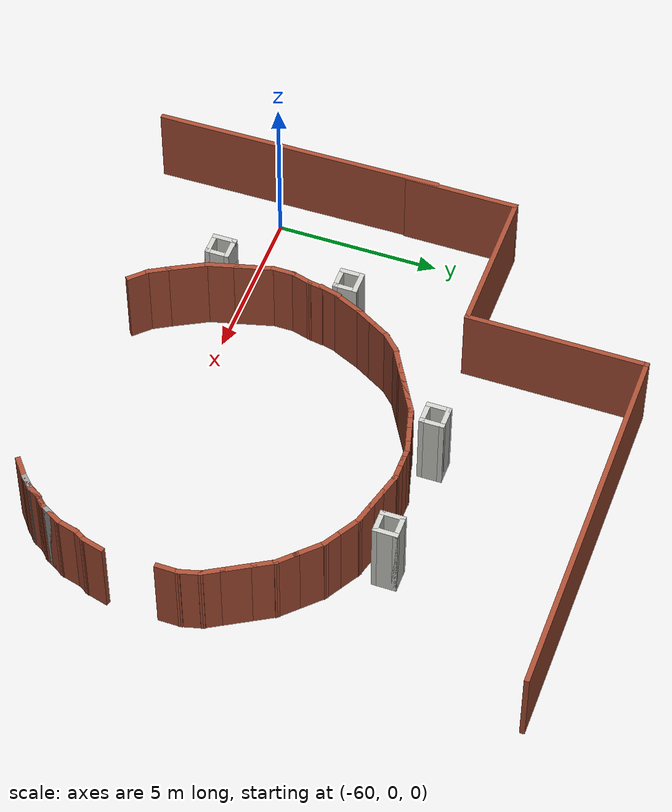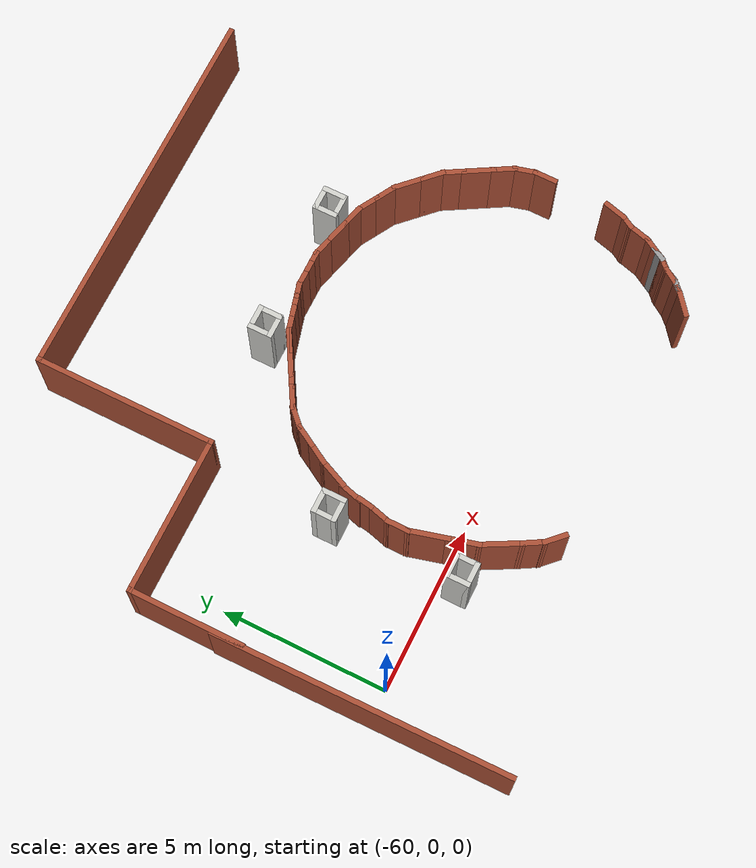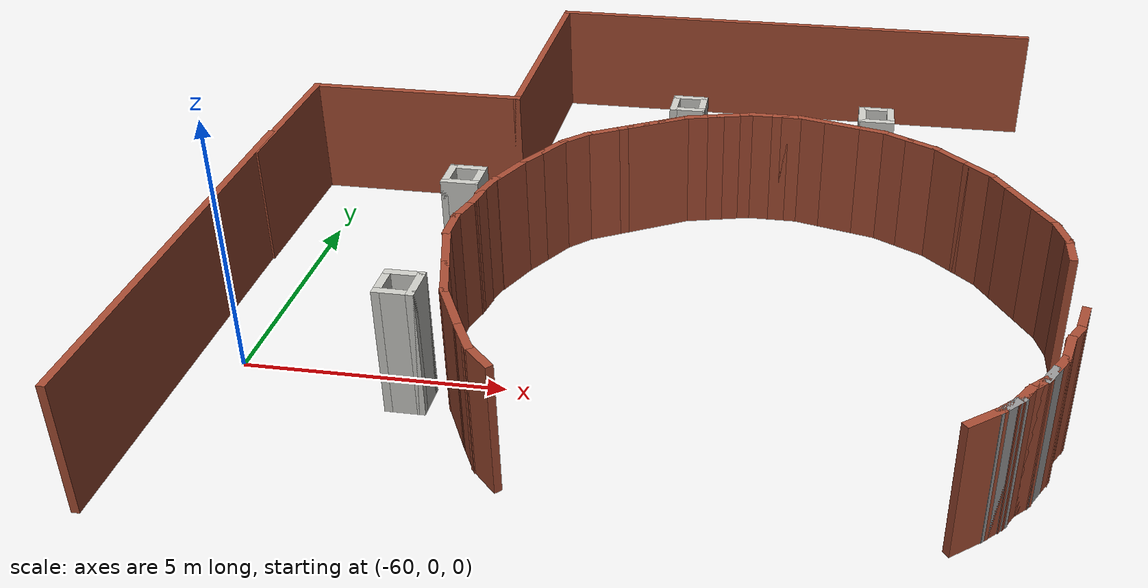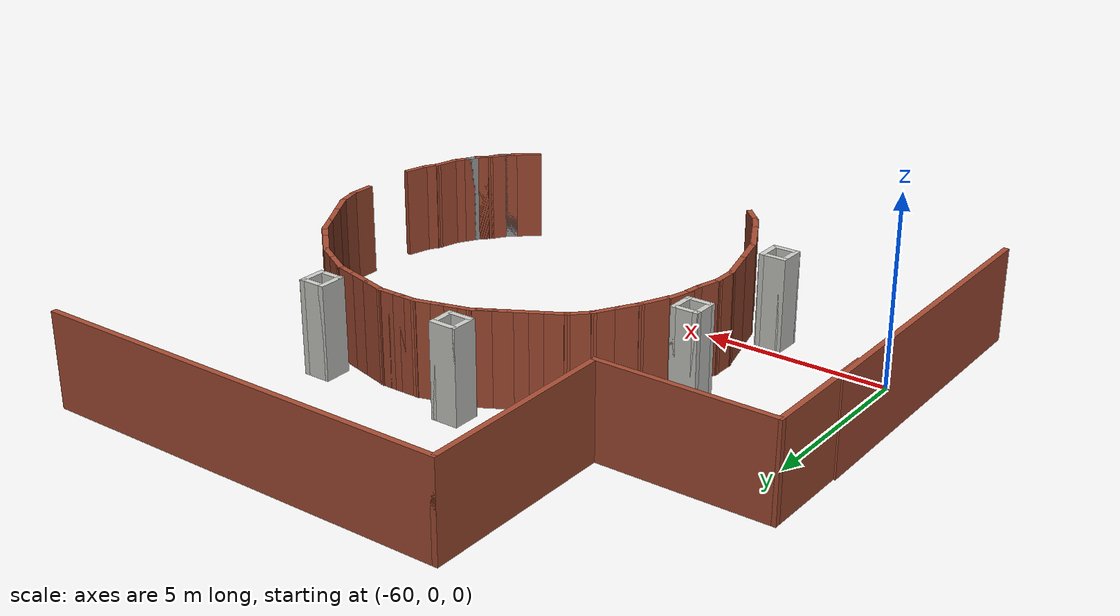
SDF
<sdf version="1.7">
 <model name="Planta1_TD">
  <pose>-6.73335 -7.75071 0 0 -0 0</pose>
  <link name="Wall_100">
   <collision name="Wall_100_Collision">
    <geometry><box><size>0.25 0.15 2.5</size></box></geometry>
    <pose>0 0 1.25 0 -0 0</pose>
   </collision>
   <visual name="Wall_100_Visual">
    <pose>0 0 1.25 0 -0 0</pose>
    <geometry><box><size>0.25 0.15 2.5</size></box></geometry>
    <material>
     <script><uri>file://media/materials/scripts/gazebo.material</uri><name>Gazebo/Grey</name></script>
     <ambient>1 1 1 1</ambient>
    </material>
    <meta><layer>0</layer></meta>
   </visual>
   <pose>-39.7639 5.45965 0 0 -0 -2.35619</pose>
  </link>
  <link name="Wall_101">
   <collision name="Wall_101_Collision">
    <geometry><box><size>0.5 0.15 2.5</size></box></geometry>
    <pose>0 0 1.25 0 -0 0</pose>
   </collision>
   <visual name="Wall_101_Visual">
    <pose>0 0 1.25 0 -0 0</pose>
    <geometry><box><size>0.5 0.15 2.5</size></box></geometry>
    <material>
     <script><uri>file://media/materials/scripts/gazebo.material</uri><name>Gazebo/Grey</name></script>
     <ambient>1 1 1 1</ambient>
    </material>
    <meta><layer>0</layer></meta>
   </visual>
   <pose>-39.923 5.30056 0 0 -0 -2.35619</pose>
  </link>
  <link name="Wall_111">
   <collision name="Wall_111_Collision">
    <geometry><box><size>0.781405 0.15 2.5</size></box></geometry>
    <pose>0 0 1.25 0 -0 0</pose>
   </collision>
   <visual name="Wall_111_Visual">
    <pose>0 0 1.25 0 -0 0</pose>
    <geometry><box><size>0.781405 0.15 2.5</size></box></geometry>
    <material>
     <script><uri>file://media/materials/scripts/gazebo.material</uri><name>Gazebo/Bricks</name></script>
     <ambient>1 1 1 1</ambient>
    </material>
    <meta><layer>0</layer></meta>
   </visual>
   <pose>-40.2931 4.97943 0 0 -0 0.675405</pose>
  </link>
  <link name="Wall_112">
   <collision name="Wall_112_Collision">
    <geometry><box><size>0.5 0.15 2.5</size></box></geometry>
    <pose>0 0 1.25 0 -0 0</pose>
   </collision>
   <visual name="Wall_112_Visual">
    <pose>0 0 1.25 0 -0 0</pose>
    <geometry><box><size>0.5 0.15 2.5</size></box></geometry>
    <material>
     <script><uri>file://media/materials/scripts/gazebo.material</uri><name>Gazebo/Bricks</name></script>
     <ambient>1 1 1 1</ambient>
    </material>
    <meta><layer>0</layer></meta>
   </visual>
   <pose>-39.923 5.30056 0 0 -0 0.785398</pose>
  </link>
  <link name="Wall_113">
   <collision name="Wall_113_Collision">
    <geometry><box><size>0.597342 0.15 2.5</size></box></geometry>
    <pose>0 0 1.25 0 -0 0</pose>
   </collision>
   <visual name="Wall_113_Visual">
    <pose>0 0 1.25 0 -0 0</pose>
    <geometry><box><size>0.597342 0.15 2.5</size></box></geometry>
    <material>
     <script><uri>file://media/materials/scripts/gazebo.material</uri><name>Gazebo/Bricks</name></script>
     <ambient>1 1 1 1</ambient>
    </material>
    <meta><layer>0</layer></meta>
   </visual>
   <pose>-39.6764 5.61121 0 0 -0 0.989308</pose>
  </link>
  <link name="Wall_114">
   <collision name="Wall_114_Collision">
    <geometry><box><size>0.5 0.15 2.5</size></box></geometry>
    <pose>0 0 1.25 0 -0 0</pose>
   </collision>
   <visual name="Wall_114_Visual">
    <pose>0 0 1.25 0 -0 0</pose>
    <geometry><box><size>0.5 0.15 2.5</size></box></geometry>
    <material>
     <script><uri>file://media/materials/scripts/gazebo.material</uri><name>Gazebo/Bricks</name></script>
     <ambient>1 1 1 1</ambient>
    </material>
    <meta><layer>0</layer></meta>
   </visual>
   <pose>-39.4298 5.92186 0 0 -0 0.785398</pose>
  </link>
  <link name="Wall_115">
   <collision name="Wall_115_Collision">
    <geometry><box><size>0.5 0.15 2.5</size></box></geometry>
    <pose>0 0 1.25 0 -0 0</pose>
   </collision>
   <visual name="Wall_115_Visual">
    <pose>0 0 1.25 0 -0 0</pose>
    <geometry><box><size>0.5 0.15 2.5</size></box></geometry>
    <material>
     <script><uri>file://media/materials/scripts/gazebo.material</uri><name>Gazebo/Bricks</name></script>
     <ambient>1 1 1 1</ambient>
    </material>
    <meta><layer>0</layer></meta>
   </visual>
   <pose>-39.2185 6.19716 0 0 -0 1.0472</pose>
  </link>
  <link name="Wall_116">
   <collision name="Wall_116_Collision">
    <geometry><box><size>0.5 0.15 2.5</size></box></geometry>
    <pose>0 0 1.25 0 -0 0</pose>
   </collision>
   <visual name="Wall_116_Visual">
    <pose>0 0 1.25 0 -0 0</pose>
    <geometry><box><size>0.5 0.15 2.5</size></box></geometry>
    <material>
     <script><uri>file://media/materials/scripts/gazebo.material</uri><name>Gazebo/Bricks</name></script>
     <ambient>1 1 1 1</ambient>
    </material>
    <meta><layer>0</layer></meta>
   </visual>
   <pose>-39.0435 6.50027 0 0 -0 1.0472</pose>
  </link>
  <link name="Wall_117">
   <collision name="Wall_117_Collision">
    <geometry><box><size>0.75 0.15 2.5</size></box></geometry>
    <pose>0 0 1.25 0 -0 0</pose>
   </collision>
   <visual name="Wall_117_Visual">
    <pose>0 0 1.25 0 -0 0</pose>
    <geometry><box><size>0.75 0.15 2.5</size></box></geometry>
    <material>
     <script><uri>file://media/materials/scripts/gazebo.material</uri><name>Gazebo/Bricks</name></script>
     <ambient>1 1 1 1</ambient>
    </material>
    <meta><layer>0</layer></meta>
   </visual>
   <pose>-38.8784 6.9416 0 0 -0 1.309</pose>
  </link>
  <link name="Wall_118">
   <collision name="Wall_118_Collision">
    <geometry><box><size>0.5 0.15 2.5</size></box></geometry>
    <pose>0 0 1.25 0 -0 0</pose>
   </collision>
   <visual name="Wall_118_Visual">
    <pose>0 0 1.25 0 -0 0</pose>
    <geometry><box><size>0.5 0.15 2.5</size></box></geometry>
    <material>
     <script><uri>file://media/materials/scripts/gazebo.material</uri><name>Gazebo/Bricks</name></script>
     <ambient>1 1 1 1</ambient>
    </material>
    <meta><layer>0</layer></meta>
   </visual>
   <pose>-38.7132 7.38293 0 0 -0 1.0472</pose>
  </link>
  <link name="Wall_119">
   <collision name="Wall_119_Collision">
    <geometry><box><size>0.75 0.15 2.5</size></box></geometry>
    <pose>0 0 1.25 0 -0 0</pose>
   </collision>
   <visual name="Wall_119_Visual">
    <pose>0 0 1.25 0 -0 0</pose>
    <geometry><box><size>0.75 0.15 2.5</size></box></geometry>
    <material>
     <script><uri>file://media/materials/scripts/gazebo.material</uri><name>Gazebo/Bricks</name></script>
     <ambient>1 1 1 1</ambient>
    </material>
    <meta><layer>0</layer></meta>
   </visual>
   <pose>-38.5481 7.82426 0 0 -0 1.309</pose>
  </link>
  <link name="Wall_121">
   <collision name="Wall_121_Collision">
    <geometry><box><size>0.5 0.15 2.5</size></box></geometry>
    <pose>0 0 1.25 0 -0 0</pose>
   </collision>
   <visual name="Wall_121_Visual">
    <pose>0 0 1.25 0 -0 0</pose>
    <geometry><box><size>0.5 0.15 2.5</size></box></geometry>
    <material>
     <script><uri>file://media/materials/scripts/gazebo.material</uri><name>Gazebo/Bricks</name></script>
     <ambient>1 1 1 1</ambient>
    </material>
    <meta><layer>0</layer></meta>
   </visual>
   <pose>-43.6377 14.7863 0 0 -0 0</pose>
  </link>
  <link name="Wall_122">
   <collision name="Wall_122_Collision">
    <geometry><box><size>0.75 0.15 2.5</size></box></geometry>
    <pose>0 0 1.25 0 -0 0</pose>
   </collision>
   <visual name="Wall_122_Visual">
    <pose>0 0 1.25 0 -0 0</pose>
    <geometry><box><size>0.75 0.15 2.5</size></box></geometry>
    <material>
     <script><uri>file://media/materials/scripts/gazebo.material</uri><name>Gazebo/Bricks</name></script>
     <ambient>1 1 1 1</ambient>
    </material>
    <meta><layer>0</layer></meta>
   </visual>
   <pose>-43.1729 14.7086 0 0 -0 -0.261799</pose>
  </link>
  <link name="Wall_123">
   <collision name="Wall_123_Collision">
    <geometry><box><size>0.75 0.15 2.5</size></box></geometry>
    <pose>0 0 1.25 0 -0 0</pose>
   </collision>
   <visual name="Wall_123_Visual">
    <pose>0 0 1.25 0 -0 0</pose>
    <geometry><box><size>0.75 0.15 2.5</size></box></geometry>
    <material>
     <script><uri>file://media/materials/scripts/gazebo.material</uri><name>Gazebo/Bricks</name></script>
     <ambient>1 1 1 1</ambient>
    </material>
    <meta><layer>0</layer></meta>
   </visual>
   <pose>-42.5934 14.5533 0 0 -0 -0.261799</pose>
  </link>
  <link name="Wall_124">
   <collision name="Wall_124_Collision">
    <geometry><box><size>0.75 0.15 2.5</size></box></geometry>
    <pose>0 0 1.25 0 -0 0</pose>
   </collision>
   <visual name="Wall_124_Visual">
    <pose>0 0 1.25 0 -0 0</pose>
    <geometry><box><size>0.75 0.15 2.5</size></box></geometry>
    <material>
     <script><uri>file://media/materials/scripts/gazebo.material</uri><name>Gazebo/Bricks</name></script>
     <ambient>1 1 1 1</ambient>
    </material>
    <meta><layer>0</layer></meta>
   </visual>
   <pose>-42.0138 14.398 0 0 -0 -0.261799</pose>
  </link>
  <link name="Wall_125">
   <collision name="Wall_125_Collision">
    <geometry><box><size>0.75 0.15 2.5</size></box></geometry>
    <pose>0 0 1.25 0 -0 0</pose>
   </collision>
   <visual name="Wall_125_Visual">
    <pose>0 0 1.25 0 -0 0</pose>
    <geometry><box><size>0.75 0.15 2.5</size></box></geometry>
    <material>
     <script><uri>file://media/materials/scripts/gazebo.material</uri><name>Gazebo/Bricks</name></script>
     <ambient>1 1 1 1</ambient>
    </material>
    <meta><layer>0</layer></meta>
   </visual>
   <pose>-41.4642 14.1704 0 0 -0 -0.523599</pose>
  </link>
  <link name="Wall_126">
   <collision name="Wall_126_Collision">
    <geometry><box><size>0.75 0.15 2.5</size></box></geometry>
    <pose>0 0 1.25 0 -0 0</pose>
   </collision>
   <visual name="Wall_126_Visual">
    <pose>0 0 1.25 0 -0 0</pose>
    <geometry><box><size>0.75 0.15 2.5</size></box></geometry>
    <material>
     <script><uri>file://media/materials/scripts/gazebo.material</uri><name>Gazebo/Bricks</name></script>
     <ambient>1 1 1 1</ambient>
    </material>
    <meta><layer>0</layer></meta>
   </visual>
   <pose>-40.9446 13.8704 0 0 -0 -0.523599</pose>
  </link>
  <link name="Wall_127">
   <collision name="Wall_127_Collision">
    <geometry><box><size>1 0.15 2.5</size></box></geometry>
    <pose>0 0 1.25 0 -0 0</pose>
   </collision>
   <visual name="Wall_127_Visual">
    <pose>0 0 1.25 0 -0 0</pose>
    <geometry><box><size>1 0.15 2.5</size></box></geometry>
    <material>
     <script><uri>file://media/materials/scripts/gazebo.material</uri><name>Gazebo/Bricks</name></script>
     <ambient>1 1 1 1</ambient>
    </material>
    <meta><layer>0</layer></meta>
   </visual>
   <pose>-40.3843 13.4199 0 0 -0 -0.785398</pose>
  </link>
  <link name="Wall_128">
   <collision name="Wall_128_Collision">
    <geometry><box><size>0.75 0.15 2.5</size></box></geometry>
    <pose>0 0 1.25 0 -0 0</pose>
   </collision>
   <visual name="Wall_128_Visual">
    <pose>0 0 1.25 0 -0 0</pose>
    <geometry><box><size>0.75 0.15 2.5</size></box></geometry>
    <material>
     <script><uri>file://media/materials/scripts/gazebo.material</uri><name>Gazebo/Bricks</name></script>
     <ambient>1 1 1 1</ambient>
    </material>
    <meta><layer>0</layer></meta>
   </visual>
   <pose>-39.8716 12.9072 0 0 -0 -0.785398</pose>
  </link>
  <link name="Wall_129">
   <collision name="Wall_129_Collision">
    <geometry><box><size>0.75 0.15 2.5</size></box></geometry>
    <pose>0 0 1.25 0 -0 0</pose>
   </collision>
   <visual name="Wall_129_Visual">
    <pose>0 0 1.25 0 -0 0</pose>
    <geometry><box><size>0.75 0.15 2.5</size></box></geometry>
    <material>
     <script><uri>file://media/materials/scripts/gazebo.material</uri><name>Gazebo/Bricks</name></script>
     <ambient>1 1 1 1</ambient>
    </material>
    <meta><layer>0</layer></meta>
   </visual>
   <pose>-39.5095 12.4353 0 0 -0 -1.0472</pose>
  </link>
  <link name="Wall_130">
   <collision name="Wall_130_Collision">
    <geometry><box><size>1 0.15 2.5</size></box></geometry>
    <pose>0 0 1.25 0 -0 0</pose>
   </collision>
   <visual name="Wall_130_Visual">
    <pose>0 0 1.25 0 -0 0</pose>
    <geometry><box><size>1 0.15 2.5</size></box></geometry>
    <material>
     <script><uri>file://media/materials/scripts/gazebo.material</uri><name>Gazebo/Bricks</name></script>
     <ambient>1 1 1 1</ambient>
    </material>
    <meta><layer>0</layer></meta>
   </visual>
   <pose>-39.147 11.8074 0 0 -0 -1.0472</pose>
  </link>
  <link name="Wall_131">
   <collision name="Wall_131_Collision">
    <geometry><box><size>0.75 0.15 2.5</size></box></geometry>
    <pose>0 0 1.25 0 -0 0</pose>
   </collision>
   <visual name="Wall_131_Visual">
    <pose>0 0 1.25 0 -0 0</pose>
    <geometry><box><size>0.75 0.15 2.5</size></box></geometry>
    <material>
     <script><uri>file://media/materials/scripts/gazebo.material</uri><name>Gazebo/Bricks</name></script>
     <ambient>1 1 1 1</ambient>
    </material>
    <meta><layer>0</layer></meta>
   </visual>
   <pose>-38.7845 11.1795 0 0 -0 -1.0472</pose>
  </link>
  <link name="Wall_132">
   <collision name="Wall_132_Collision">
    <geometry><box><size>0.75 0.15 2.5</size></box></geometry>
    <pose>0 0 1.25 0 -0 0</pose>
   </collision>
   <visual name="Wall_132_Visual">
    <pose>0 0 1.25 0 -0 0</pose>
    <geometry><box><size>0.75 0.15 2.5</size></box></geometry>
    <material>
     <script><uri>file://media/materials/scripts/gazebo.material</uri><name>Gazebo/Bricks</name></script>
     <ambient>1 1 1 1</ambient>
    </material>
    <meta><layer>0</layer></meta>
   </visual>
   <pose>-38.5568 10.63 0 0 -0 -1.309</pose>
  </link>
  <link name="Wall_133">
   <collision name="Wall_133_Collision">
    <geometry><box><size>0.75 0.15 2.5</size></box></geometry>
    <pose>0 0 1.25 0 -0 0</pose>
   </collision>
   <visual name="Wall_133_Visual">
    <pose>0 0 1.25 0 -0 0</pose>
    <geometry><box><size>0.75 0.15 2.5</size></box></geometry>
    <material>
     <script><uri>file://media/materials/scripts/gazebo.material</uri><name>Gazebo/Bricks</name></script>
     <ambient>1 1 1 1</ambient>
    </material>
    <meta><layer>0</layer></meta>
   </visual>
   <pose>-38.4792 10.0402 0 0 -0 -1.5708</pose>
  </link>
  <link name="Wall_137">
   <collision name="Wall_137_Collision">
    <geometry><box><size>0.5 0.15 2.5</size></box></geometry>
    <pose>0 0 1.25 0 -0 0</pose>
   </collision>
   <visual name="Wall_137_Visual">
    <pose>0 0 1.25 0 -0 0</pose>
    <geometry><box><size>0.5 0.15 2.5</size></box></geometry>
    <material>
     <script><uri>file://media/materials/scripts/gazebo.material</uri><name>Gazebo/Bricks</name></script>
     <ambient>1 1 1 1</ambient>
    </material>
    <meta><layer>0</layer></meta>
   </visual>
   <pose>-43.9877 14.7863 0 0 -0 3.14159</pose>
  </link>
  <link name="Wall_138">
   <collision name="Wall_138_Collision">
    <geometry><box><size>0.5 0.15 2.5</size></box></geometry>
    <pose>0 0 1.25 0 -0 0</pose>
   </collision>
   <visual name="Wall_138_Visual">
    <pose>0 0 1.25 0 -0 0</pose>
    <geometry><box><size>0.5 0.15 2.5</size></box></geometry>
    <material>
     <script><uri>file://media/materials/scripts/gazebo.material</uri><name>Gazebo/Bricks</name></script>
     <ambient>1 1 1 1</ambient>
    </material>
    <meta><layer>0</layer></meta>
   </visual>
   <pose>-44.3377 14.7863 0 0 -0 3.14159</pose>
  </link>
  <link name="Wall_139">
   <collision name="Wall_139_Collision">
    <geometry><box><size>0.5 0.15 2.5</size></box></geometry>
    <pose>0 0 1.25 0 -0 0</pose>
   </collision>
   <visual name="Wall_139_Visual">
    <pose>0 0 1.25 0 -0 0</pose>
    <geometry><box><size>0.5 0.15 2.5</size></box></geometry>
    <material>
     <script><uri>file://media/materials/scripts/gazebo.material</uri><name>Gazebo/Bricks</name></script>
     <ambient>1 1 1 1</ambient>
    </material>
    <meta><layer>0</layer></meta>
   </visual>
   <pose>-44.6817 14.741 0 0 -0 -2.87979</pose>
  </link>
  <link name="Wall_140">
   <collision name="Wall_140_Collision">
    <geometry><box><size>0.5 0.15 2.5</size></box></geometry>
    <pose>0 0 1.25 0 -0 0</pose>
   </collision>
   <visual name="Wall_140_Visual">
    <pose>0 0 1.25 0 -0 0</pose>
    <geometry><box><size>0.5 0.15 2.5</size></box></geometry>
    <material>
     <script><uri>file://media/materials/scripts/gazebo.material</uri><name>Gazebo/Bricks</name></script>
     <ambient>1 1 1 1</ambient>
    </material>
    <meta><layer>0</layer></meta>
   </visual>
   <pose>-45.0198 14.6504 0 0 -0 -2.87979</pose>
  </link>
  <link name="Wall_141">
   <collision name="Wall_141_Collision">
    <geometry><box><size>0.5 0.15 2.5</size></box></geometry>
    <pose>0 0 1.25 0 -0 0</pose>
   </collision>
   <visual name="Wall_141_Visual">
    <pose>0 0 1.25 0 -0 0</pose>
    <geometry><box><size>0.5 0.15 2.5</size></box></geometry>
    <material>
     <script><uri>file://media/materials/scripts/gazebo.material</uri><name>Gazebo/Bricks</name></script>
     <ambient>1 1 1 1</ambient>
    </material>
    <meta><layer>0</layer></meta>
   </visual>
   <pose>-45.3579 14.5598 0 0 -0 -2.87979</pose>
  </link>
  <link name="Wall_142">
   <collision name="Wall_142_Collision">
    <geometry><box><size>0.5 0.15 2.5</size></box></geometry>
    <pose>0 0 1.25 0 -0 0</pose>
   </collision>
   <visual name="Wall_142_Visual">
    <pose>0 0 1.25 0 -0 0</pose>
    <geometry><box><size>0.5 0.15 2.5</size></box></geometry>
    <material>
     <script><uri>file://media/materials/scripts/gazebo.material</uri><name>Gazebo/Bricks</name></script>
     <ambient>1 1 1 1</ambient>
    </material>
    <meta><layer>0</layer></meta>
   </visual>
   <pose>-45.6959 14.4692 0 0 -0 -2.87979</pose>
  </link>
  <link name="Wall_143">
   <collision name="Wall_143_Collision">
    <geometry><box><size>0.75 0.15 2.5</size></box></geometry>
    <pose>0 0 1.25 0 -0 0</pose>
   </collision>
   <visual name="Wall_143_Visual">
    <pose>0 0 1.25 0 -0 0</pose>
    <geometry><box><size>0.75 0.15 2.5</size></box></geometry>
    <material>
     <script><uri>file://media/materials/scripts/gazebo.material</uri><name>Gazebo/Bricks</name></script>
     <ambient>1 1 1 1</ambient>
    </material>
    <meta><layer>0</layer></meta>
   </visual>
   <pose>-46.1248 14.2739 0 0 -0 -2.61799</pose>
  </link>
  <link name="Wall_144">
   <collision name="Wall_144_Collision">
    <geometry><box><size>0.5 0.15 2.5</size></box></geometry>
    <pose>0 0 1.25 0 -0 0</pose>
   </collision>
   <visual name="Wall_144_Visual">
    <pose>0 0 1.25 0 -0 0</pose>
    <geometry><box><size>0.5 0.15 2.5</size></box></geometry>
    <material>
     <script><uri>file://media/materials/scripts/gazebo.material</uri><name>Gazebo/Bricks</name></script>
     <ambient>1 1 1 1</ambient>
    </material>
    <meta><layer>0</layer></meta>
   </visual>
   <pose>-46.5362 14.0364 0 0 -0 -2.61799</pose>
  </link>
  <link name="Wall_145">
   <collision name="Wall_145_Collision">
    <geometry><box><size>0.5 0.15 2.5</size></box></geometry>
    <pose>0 0 1.25 0 -0 0</pose>
   </collision>
   <visual name="Wall_145_Visual">
    <pose>0 0 1.25 0 -0 0</pose>
    <geometry><box><size>0.5 0.15 2.5</size></box></geometry>
    <material>
     <script><uri>file://media/materials/scripts/gazebo.material</uri><name>Gazebo/Bricks</name></script>
     <ambient>1 1 1 1</ambient>
    </material>
    <meta><layer>0</layer></meta>
   </visual>
   <pose>-46.8393 13.8614 0 0 -0 -2.61799</pose>
  </link>
  <link name="Wall_151">
   <collision name="Wall_151_Collision">
    <geometry><box><size>0.75 0.15 2.5</size></box></geometry>
    <pose>0 0 1.25 0 -0 0</pose>
   </collision>
   <visual name="Wall_151_Visual">
    <pose>0 0 1.25 0 -0 0</pose>
    <geometry><box><size>0.75 0.15 2.5</size></box></geometry>
    <material>
     <script><uri>file://media/materials/scripts/gazebo.material</uri><name>Gazebo/Bricks</name></script>
     <ambient>1 1 1 1</ambient>
    </material>
    <meta><layer>0</layer></meta>
   </visual>
   <pose>-48.3443 5.79796 0 0 -0 -1.0472</pose>
  </link>
  <link name="Wall_152">
   <collision name="Wall_152_Collision">
    <geometry><box><size>0.75 0.15 2.5</size></box></geometry>
    <pose>0 0 1.25 0 -0 0</pose>
   </collision>
   <visual name="Wall_152_Visual">
    <pose>0 0 1.25 0 -0 0</pose>
    <geometry><box><size>0.75 0.15 2.5</size></box></geometry>
    <material>
     <script><uri>file://media/materials/scripts/gazebo.material</uri><name>Gazebo/Bricks</name></script>
     <ambient>1 1 1 1</ambient>
    </material>
    <meta><layer>0</layer></meta>
   </visual>
   <pose>-47.9822 5.32602 0 0 -0 -0.785398</pose>
  </link>
  <link name="Wall_160">
   <collision name="Wall_160_Collision">
    <geometry><box><size>1.45 0.15 2.5</size></box></geometry>
    <pose>0 0 1.25 0 -0 0</pose>
   </collision>
   <visual name="Wall_160_Visual">
    <pose>0 0 1.25 0 -0 0</pose>
    <geometry><box><size>1.45 0.15 2.5</size></box></geometry>
    <material>
     <script><uri>file://media/materials/scripts/gazebo.material</uri><name>Gazebo/Bricks</name></script>
     <ambient>1 1 1 1</ambient>
    </material>
    <meta><layer>0</layer></meta>
   </visual>
   <pose>-46.4279 14.0989 0 0 -0 -2.61799</pose>
  </link>
  <link name="Wall_161">
   <collision name="Wall_161_Collision">
    <geometry><box><size>0.5 0.15 2.5</size></box></geometry>
    <pose>0 0 1.25 0 -0 0</pose>
   </collision>
   <visual name="Wall_161_Visual">
    <pose>0 0 1.25 0 -0 0</pose>
    <geometry><box><size>0.5 0.15 2.5</size></box></geometry>
    <material>
     <script><uri>file://media/materials/scripts/gazebo.material</uri><name>Gazebo/Bricks</name></script>
     <ambient>1 1 1 1</ambient>
    </material>
    <meta><layer>0</layer></meta>
   </visual>
   <pose>-47.1424 13.6864 0 0 -0 -2.61799</pose>
  </link>
  <link name="Wall_162">
   <collision name="Wall_162_Collision">
    <geometry><box><size>0.75 0.15 2.5</size></box></geometry>
    <pose>0 0 1.25 0 -0 0</pose>
   </collision>
   <visual name="Wall_162_Visual">
    <pose>0 0 1.25 0 -0 0</pose>
    <geometry><box><size>0.75 0.15 2.5</size></box></geometry>
    <material>
     <script><uri>file://media/materials/scripts/gazebo.material</uri><name>Gazebo/Bricks</name></script>
     <ambient>1 1 1 1</ambient>
    </material>
    <meta><layer>0</layer></meta>
   </visual>
   <pose>-47.5537 13.4489 0 0 -0 -2.61799</pose>
  </link>
  <link name="Wall_163">
   <collision name="Wall_163_Collision">
    <geometry><box><size>0.75 0.15 2.5</size></box></geometry>
    <pose>0 0 1.25 0 -0 0</pose>
   </collision>
   <visual name="Wall_163_Visual">
    <pose>0 0 1.25 0 -0 0</pose>
    <geometry><box><size>0.75 0.15 2.5</size></box></geometry>
    <material>
     <script><uri>file://media/materials/scripts/gazebo.material</uri><name>Gazebo/Bricks</name></script>
     <ambient>1 1 1 1</ambient>
    </material>
    <meta><layer>0</layer></meta>
   </visual>
   <pose>-48.0257 13.0868 0 0 -0 -2.35619</pose>
  </link>
  <link name="Wall_164">
   <collision name="Wall_164_Collision">
    <geometry><box><size>0.75 0.15 2.5</size></box></geometry>
    <pose>0 0 1.25 0 -0 0</pose>
   </collision>
   <visual name="Wall_164_Visual">
    <pose>0 0 1.25 0 -0 0</pose>
    <geometry><box><size>0.75 0.15 2.5</size></box></geometry>
    <material>
     <script><uri>file://media/materials/scripts/gazebo.material</uri><name>Gazebo/Bricks</name></script>
     <ambient>1 1 1 1</ambient>
    </material>
    <meta><layer>0</layer></meta>
   </visual>
   <pose>-48.3878 12.6148 0 0 -0 -2.0944</pose>
  </link>
  <link name="Wall_165">
   <collision name="Wall_165_Collision">
    <geometry><box><size>0.75 0.15 2.5</size></box></geometry>
    <pose>0 0 1.25 0 -0 0</pose>
   </collision>
   <visual name="Wall_165_Visual">
    <pose>0 0 1.25 0 -0 0</pose>
    <geometry><box><size>0.75 0.15 2.5</size></box></geometry>
    <material>
     <script><uri>file://media/materials/scripts/gazebo.material</uri><name>Gazebo/Bricks</name></script>
     <ambient>1 1 1 1</ambient>
    </material>
    <meta><layer>0</layer></meta>
   </visual>
   <pose>-48.6878 12.0952 0 0 -0 -2.0944</pose>
  </link>
  <link name="Wall_166">
   <collision name="Wall_166_Collision">
    <geometry><box><size>0.973409 0.15 2.5</size></box></geometry>
    <pose>0 0 1.25 0 -0 0</pose>
   </collision>
   <visual name="Wall_166_Visual">
    <pose>0 0 1.25 0 -0 0</pose>
    <geometry><box><size>0.973409 0.15 2.5</size></box></geometry>
    <material>
     <script><uri>file://media/materials/scripts/gazebo.material</uri><name>Gazebo/Bricks</name></script>
     <ambient>1 1 1 1</ambient>
    </material>
    <meta><layer>0</layer></meta>
   </visual>
   <pose>-49.0047 11.459 0 0 -0 -1.98807</pose>
  </link>
  <link name="Wall_167">
   <collision name="Wall_167_Collision">
    <geometry><box><size>0.75 0.15 2.5</size></box></geometry>
    <pose>0 0 1.25 0 -0 0</pose>
   </collision>
   <visual name="Wall_167_Visual">
    <pose>0 0 1.25 0 -0 0</pose>
    <geometry><box><size>0.75 0.15 2.5</size></box></geometry>
    <material>
     <script><uri>file://media/materials/scripts/gazebo.material</uri><name>Gazebo/Bricks</name></script>
     <ambient>1 1 1 1</ambient>
    </material>
    <meta><layer>0</layer></meta>
   </visual>
   <pose>-49.2756 10.7929 0 0 -0 -1.8326</pose>
  </link>
  <link name="Wall_168">
   <collision name="Wall_168_Collision">
    <geometry><box><size>0.526411 0.15 2.5</size></box></geometry>
    <pose>0 0 1.25 0 -0 0</pose>
   </collision>
   <visual name="Wall_168_Visual">
    <pose>0 0 1.25 0 -0 0</pose>
    <geometry><box><size>0.526411 0.15 2.5</size></box></geometry>
    <material>
     <script><uri>file://media/materials/scripts/gazebo.material</uri><name>Gazebo/Bricks</name></script>
     <ambient>1 1 1 1</ambient>
    </material>
    <meta><layer>0</layer></meta>
   </visual>
   <pose>-49.3574 10.3174 0 0 -0 -1.73437</pose>
  </link>
  <link name="Wall_169">
   <collision name="Wall_169_Collision">
    <geometry><box><size>0.75 0.15 2.5</size></box></geometry>
    <pose>0 0 1.25 0 -0 0</pose>
   </collision>
   <visual name="Wall_169_Visual">
    <pose>0 0 1.25 0 -0 0</pose>
    <geometry><box><size>0.75 0.15 2.5</size></box></geometry>
    <material>
     <script><uri>file://media/materials/scripts/gazebo.material</uri><name>Gazebo/Bricks</name></script>
     <ambient>1 1 1 1</ambient>
    </material>
    <meta><layer>0</layer></meta>
   </visual>
   <pose>-49.4657 9.84194 0 0 -0 -1.8326</pose>
  </link>
  <link name="Wall_170">
   <collision name="Wall_170_Collision">
    <geometry><box><size>0.75 0.15 2.5</size></box></geometry>
    <pose>0 0 1.25 0 -0 0</pose>
   </collision>
   <visual name="Wall_170_Visual">
    <pose>0 0 1.25 0 -0 0</pose>
    <geometry><box><size>0.75 0.15 2.5</size></box></geometry>
    <material>
     <script><uri>file://media/materials/scripts/gazebo.material</uri><name>Gazebo/Bricks</name></script>
     <ambient>1 1 1 1</ambient>
    </material>
    <meta><layer>0</layer></meta>
   </visual>
   <pose>-49.5434 9.25217 0 0 -0 -1.5708</pose>
  </link>
  <link name="Wall_171">
   <collision name="Wall_171_Collision">
    <geometry><box><size>1.25 0.15 2.5</size></box></geometry>
    <pose>0 0 1.25 0 -0 0</pose>
   </collision>
   <visual name="Wall_171_Visual">
    <pose>0 0 1.25 0 -0 0</pose>
    <geometry><box><size>1.25 0.15 2.5</size></box></geometry>
    <material>
     <script><uri>file://media/materials/scripts/gazebo.material</uri><name>Gazebo/Bricks</name></script>
     <ambient>1 1 1 1</ambient>
    </material>
    <meta><layer>0</layer></meta>
   </visual>
   <pose>-49.401 8.42091 0 0 -0 -1.309</pose>
  </link>
  <link name="Wall_172">
   <collision name="Wall_172_Collision">
    <geometry><box><size>1 0.15 2.5</size></box></geometry>
    <pose>0 0 1.25 0 -0 0</pose>
   </collision>
   <visual name="Wall_172_Visual">
    <pose>0 0 1.25 0 -0 0</pose>
    <geometry><box><size>1 0.15 2.5</size></box></geometry>
    <material>
     <script><uri>file://media/materials/scripts/gazebo.material</uri><name>Gazebo/Bricks</name></script>
     <ambient>1 1 1 1</ambient>
    </material>
    <meta><layer>0</layer></meta>
   </visual>
   <pose>-49.1487 7.47913 0 0 -0 -1.309</pose>
  </link>
  <link name="Wall_174">
   <collision name="Wall_174_Collision">
    <geometry><box><size>1.2981 0.15 2.5</size></box></geometry>
    <pose>0 0 1.25 0 -0 0</pose>
   </collision>
   <visual name="Wall_174_Visual">
    <pose>0 0 1.25 0 -0 0</pose>
    <geometry><box><size>1.2981 0.15 2.5</size></box></geometry>
    <material>
     <script><uri>file://media/materials/scripts/gazebo.material</uri><name>Gazebo/Bricks</name></script>
     <ambient>1 1 1 1</ambient>
    </material>
    <meta><layer>0</layer></meta>
   </visual>
   <pose>-48.7665 6.56319 0 0 -0 2.06477</pose>
  </link>
  <link name="Wall_217">
   <collision name="Wall_217_Collision">
    <geometry><box><size>0.75 0.15 2.5</size></box></geometry>
    <pose>0 0 1.25 0 -0 0</pose>
   </collision>
   <visual name="Wall_217_Visual">
    <pose>0 0 1.25 0 -0 0</pose>
    <geometry><box><size>0.75 0.15 2.5</size></box></geometry>
    <material>
     <script><uri>file://media/materials/scripts/gazebo.material</uri><name>Gazebo/CeilingTiled</name></script>
     <ambient>1 1 1 1</ambient>
    </material>
    <meta><layer>0</layer></meta>
   </visual>
   <pose>-49.8572 7.47951 0 0 -0 0</pose>
  </link>
  <link name="Wall_218">
   <collision name="Wall_218_Collision">
    <geometry><box><size>0.75 0.15 2.5</size></box></geometry>
    <pose>0 0 1.25 0 -0 0</pose>
   </collision>
   <visual name="Wall_218_Visual">
    <pose>0 0 1.25 0 -0 0</pose>
    <geometry><box><size>0.75 0.15 2.5</size></box></geometry>
    <material>
     <script><uri>file://media/materials/scripts/gazebo.material</uri><name>Gazebo/CeilingTiled</name></script>
     <ambient>1 1 1 1</ambient>
    </material>
    <meta><layer>0</layer></meta>
   </visual>
   <pose>-49.5572 7.17951 0 0 -0 -1.5708</pose>
  </link>
  <link name="Wall_219">
   <collision name="Wall_219_Collision">
    <geometry><box><size>0.75 0.15 2.5</size></box></geometry>
    <pose>0 0 1.25 0 -0 0</pose>
   </collision>
   <visual name="Wall_219_Visual">
    <pose>0 0 1.25 0 -0 0</pose>
    <geometry><box><size>0.75 0.15 2.5</size></box></geometry>
    <material>
     <script><uri>file://media/materials/scripts/gazebo.material</uri><name>Gazebo/CeilingTiled</name></script>
     <ambient>1 1 1 1</ambient>
    </material>
    <meta><layer>0</layer></meta>
   </visual>
   <pose>-49.8572 6.87951 0 0 -0 3.14159</pose>
  </link>
  <link name="Wall_220">
   <collision name="Wall_220_Collision">
    <geometry><box><size>0.75 0.15 2.5</size></box></geometry>
    <pose>0 0 1.25 0 -0 0</pose>
   </collision>
   <visual name="Wall_220_Visual">
    <pose>0 0 1.25 0 -0 0</pose>
    <geometry><box><size>0.75 0.15 2.5</size></box></geometry>
    <material>
     <script><uri>file://media/materials/scripts/gazebo.material</uri><name>Gazebo/CeilingTiled</name></script>
     <ambient>1 1 1 1</ambient>
    </material>
    <meta><layer>0</layer></meta>
   </visual>
   <pose>-50.1572 7.17951 0 0 -0 1.5708</pose>
  </link>
  <link name="Wall_222">
   <collision name="Wall_222_Collision">
    <geometry><box><size>0.75 0.15 2.5</size></box></geometry>
    <pose>0 0 1.25 0 -0 0</pose>
   </collision>
   <visual name="Wall_222_Visual">
    <pose>0 0 1.25 0 -0 0</pose>
    <geometry><box><size>0.75 0.15 2.5</size></box></geometry>
    <material>
     <script><uri>file://media/materials/scripts/gazebo.material</uri><name>Gazebo/CeilingTiled</name></script>
     <ambient>1 1 1 1</ambient>
    </material>
    <meta><layer>0</layer></meta>
   </visual>
   <pose>-49.8458 11.4592 0 0 -0 0</pose>
  </link>
  <link name="Wall_223">
   <collision name="Wall_223_Collision">
    <geometry><box><size>0.75 0.15 2.5</size></box></geometry>
    <pose>0 0 1.25 0 -0 0</pose>
   </collision>
   <visual name="Wall_223_Visual">
    <pose>0 0 1.25 0 -0 0</pose>
    <geometry><box><size>0.75 0.15 2.5</size></box></geometry>
    <material>
     <script><uri>file://media/materials/scripts/gazebo.material</uri><name>Gazebo/CeilingTiled</name></script>
     <ambient>1 1 1 1</ambient>
    </material>
    <meta><layer>0</layer></meta>
   </visual>
   <pose>-49.5458 11.1592 0 0 -0 -1.5708</pose>
  </link>
  <link name="Wall_224">
   <collision name="Wall_224_Collision">
    <geometry><box><size>0.75 0.15 2.5</size></box></geometry>
    <pose>0 0 1.25 0 -0 0</pose>
   </collision>
   <visual name="Wall_224_Visual">
    <pose>0 0 1.25 0 -0 0</pose>
    <geometry><box><size>0.75 0.15 2.5</size></box></geometry>
    <material>
     <script><uri>file://media/materials/scripts/gazebo.material</uri><name>Gazebo/CeilingTiled</name></script>
     <ambient>1 1 1 1</ambient>
    </material>
    <meta><layer>0</layer></meta>
   </visual>
   <pose>-49.8458 10.8592 0 0 -0 3.14159</pose>
  </link>
  <link name="Wall_225">
   <collision name="Wall_225_Collision">
    <geometry><box><size>0.75 0.15 2.5</size></box></geometry>
    <pose>0 0 1.25 0 -0 0</pose>
   </collision>
   <visual name="Wall_225_Visual">
    <pose>0 0 1.25 0 -0 0</pose>
    <geometry><box><size>0.75 0.15 2.5</size></box></geometry>
    <material>
     <script><uri>file://media/materials/scripts/gazebo.material</uri><name>Gazebo/CeilingTiled</name></script>
     <ambient>1 1 1 1</ambient>
    </material>
    <meta><layer>0</layer></meta>
   </visual>
   <pose>-50.1458 11.1592 0 0 -0 1.5708</pose>
  </link>
  <link name="Wall_227">
   <collision name="Wall_227_Collision">
    <geometry><box><size>0.75 0.15 2.5</size></box></geometry>
    <pose>0 0 1.25 0 -0 0</pose>
   </collision>
   <visual name="Wall_227_Visual">
    <pose>0 0 1.25 0 -0 0</pose>
    <geometry><box><size>0.75 0.15 2.5</size></box></geometry>
    <material>
     <script><uri>file://media/materials/scripts/gazebo.material</uri><name>Gazebo/CeilingTiled</name></script>
     <ambient>1 1 1 1</ambient>
    </material>
    <meta><layer>0</layer></meta>
   </visual>
   <pose>-45.923 15.4275 0 0 -0 0</pose>
  </link>
  <link name="Wall_228">
   <collision name="Wall_228_Collision">
    <geometry><box><size>0.75 0.15 2.5</size></box></geometry>
    <pose>0 0 1.25 0 -0 0</pose>
   </collision>
   <visual name="Wall_228_Visual">
    <pose>0 0 1.25 0 -0 0</pose>
    <geometry><box><size>0.75 0.15 2.5</size></box></geometry>
    <material>
     <script><uri>file://media/materials/scripts/gazebo.material</uri><name>Gazebo/CeilingTiled</name></script>
     <ambient>1 1 1 1</ambient>
    </material>
    <meta><layer>0</layer></meta>
   </visual>
   <pose>-45.623 15.1275 0 0 -0 -1.5708</pose>
  </link>
  <link name="Wall_229">
   <collision name="Wall_229_Collision">
    <geometry><box><size>0.75 0.15 2.5</size></box></geometry>
    <pose>0 0 1.25 0 -0 0</pose>
   </collision>
   <visual name="Wall_229_Visual">
    <pose>0 0 1.25 0 -0 0</pose>
    <geometry><box><size>0.75 0.15 2.5</size></box></geometry>
    <material>
     <script><uri>file://media/materials/scripts/gazebo.material</uri><name>Gazebo/CeilingTiled</name></script>
     <ambient>1 1 1 1</ambient>
    </material>
    <meta><layer>0</layer></meta>
   </visual>
   <pose>-45.923 14.8275 0 0 -0 3.14159</pose>
  </link>
  <link name="Wall_230">
   <collision name="Wall_230_Collision">
    <geometry><box><size>0.75 0.15 2.5</size></box></geometry>
    <pose>0 0 1.25 0 -0 0</pose>
   </collision>
   <visual name="Wall_230_Visual">
    <pose>0 0 1.25 0 -0 0</pose>
    <geometry><box><size>0.75 0.15 2.5</size></box></geometry>
    <material>
     <script><uri>file://media/materials/scripts/gazebo.material</uri><name>Gazebo/CeilingTiled</name></script>
     <ambient>1 1 1 1</ambient>
    </material>
    <meta><layer>0</layer></meta>
   </visual>
   <pose>-46.223 15.1275 0 0 -0 1.5708</pose>
  </link>
  <link name="Wall_232">
   <collision name="Wall_232_Collision">
    <geometry><box><size>0.75 0.15 2.5</size></box></geometry>
    <pose>0 0 1.25 0 -0 0</pose>
   </collision>
   <visual name="Wall_232_Visual">
    <pose>0 0 1.25 0 -0 0</pose>
    <geometry><box><size>0.75 0.15 2.5</size></box></geometry>
    <material>
     <script><uri>file://media/materials/scripts/gazebo.material</uri><name>Gazebo/CeilingTiled</name></script>
     <ambient>1 1 1 1</ambient>
    </material>
    <meta><layer>0</layer></meta>
   </visual>
   <pose>-41.8978 15.4502 0 0 -0 0</pose>
  </link>
  <link name="Wall_233">
   <collision name="Wall_233_Collision">
    <geometry><box><size>0.75 0.15 2.5</size></box></geometry>
    <pose>0 0 1.25 0 -0 0</pose>
   </collision>
   <visual name="Wall_233_Visual">
    <pose>0 0 1.25 0 -0 0</pose>
    <geometry><box><size>0.75 0.15 2.5</size></box></geometry>
    <material>
     <script><uri>file://media/materials/scripts/gazebo.material</uri><name>Gazebo/CeilingTiled</name></script>
     <ambient>1 1 1 1</ambient>
    </material>
    <meta><layer>0</layer></meta>
   </visual>
   <pose>-41.5978 15.1502 0 0 -0 -1.5708</pose>
  </link>
  <link name="Wall_234">
   <collision name="Wall_234_Collision">
    <geometry><box><size>0.75 0.15 2.5</size></box></geometry>
    <pose>0 0 1.25 0 -0 0</pose>
   </collision>
   <visual name="Wall_234_Visual">
    <pose>0 0 1.25 0 -0 0</pose>
    <geometry><box><size>0.75 0.15 2.5</size></box></geometry>
    <material>
     <script><uri>file://media/materials/scripts/gazebo.material</uri><name>Gazebo/CeilingTiled</name></script>
     <ambient>1 1 1 1</ambient>
    </material>
    <meta><layer>0</layer></meta>
   </visual>
   <pose>-41.8978 14.8502 0 0 -0 3.14159</pose>
  </link>
  <link name="Wall_235">
   <collision name="Wall_235_Collision">
    <geometry><box><size>0.75 0.15 2.5</size></box></geometry>
    <pose>0 0 1.25 0 -0 0</pose>
   </collision>
   <visual name="Wall_235_Visual">
    <pose>0 0 1.25 0 -0 0</pose>
    <geometry><box><size>0.75 0.15 2.5</size></box></geometry>
    <material>
     <script><uri>file://media/materials/scripts/gazebo.material</uri><name>Gazebo/CeilingTiled</name></script>
     <ambient>1 1 1 1</ambient>
    </material>
    <meta><layer>0</layer></meta>
   </visual>
   <pose>-42.1978 15.1502 0 0 -0 1.5708</pose>
  </link>
  <link name="Wall_63">
   <collision name="Wall_63_Collision">
    <geometry><box><size>8.89048 0.15 2.5</size></box></geometry>
    <pose>0 0 1.25 0 -0 0</pose>
   </collision>
   <visual name="Wall_63_Visual">
    <pose>0 0 1.25 0 -0 0</pose>
    <geometry><box><size>8.89048 0.15 2.5</size></box></geometry>
    <material>
     <script><uri>file://media/materials/scripts/gazebo.material</uri><name>Gazebo/Bricks</name></script>
     <ambient>1 1 1 1</ambient>
    </material>
    <meta><layer>0</layer></meta>
   </visual>
   <pose>-54.2897 7.98257 0 0 -0 -1.56027</pose>
  </link>
  <link name="Wall_65">
   <collision name="Wall_65_Collision">
    <geometry><box><size>3.5 0.15 2.5</size></box></geometry>
    <pose>0 0 1.25 0 -0 0</pose>
   </collision>
   <visual name="Wall_65_Visual">
    <pose>0 0 1.25 0 -0 0</pose>
    <geometry><box><size>3.5 0.15 2.5</size></box></geometry>
    <material>
     <script><uri>file://media/materials/scripts/gazebo.material</uri><name>Gazebo/Bricks</name></script>
     <ambient>1 1 1 1</ambient>
    </material>
    <meta><layer>0</layer></meta>
   </visual>
   <pose>-54.2897 13.1616 0 0 -0 -1.5708</pose>
  </link>
  <link name="Wall_89">
   <collision name="Wall_89_Collision">
    <geometry><box><size>4.75 0.15 2.5</size></box></geometry>
    <pose>0 0 1.25 0 -0 0</pose>
   </collision>
   <visual name="Wall_89_Visual">
    <pose>0 0 1.25 0 -0 0</pose>
    <geometry><box><size>4.75 0.15 2.5</size></box></geometry>
    <material>
     <script><uri>file://media/materials/scripts/gazebo.material</uri><name>Gazebo/Bricks</name></script>
     <ambient>1 1 1 1</ambient>
    </material>
    <meta><layer>0</layer></meta>
   </visual>
   <pose>-51.9897 14.8366 0 0 -0 0</pose>
  </link>
  <link name="Wall_90">
   <collision name="Wall_90_Collision">
    <geometry><box><size>5.5 0.15 2.5</size></box></geometry>
    <pose>0 0 1.25 0 -0 0</pose>
   </collision>
   <visual name="Wall_90_Visual">
    <pose>0 0 1.25 0 -0 0</pose>
    <geometry><box><size>5.5 0.15 2.5</size></box></geometry>
    <material>
     <script><uri>file://media/materials/scripts/gazebo.material</uri><name>Gazebo/Bricks</name></script>
     <ambient>1 1 1 1</ambient>
    </material>
    <meta><layer>0</layer></meta>
   </visual>
   <pose>-49.6897 17.5116 0 0 -0 1.5708</pose>
  </link>
  <link name="Wall_92">
   <collision name="Wall_92_Collision">
    <geometry><box><size>11.5 0.15 2.5</size></box></geometry>
    <pose>0 0 1.25 0 -0 0</pose>
   </collision>
   <visual name="Wall_92_Visual">
    <pose>0 0 1.25 0 -0 0</pose>
    <geometry><box><size>11.5 0.15 2.5</size></box></geometry>
    <material>
     <script><uri>file://media/materials/scripts/gazebo.material</uri><name>Gazebo/Bricks</name></script>
     <ambient>1 1 1 1</ambient>
    </material>
    <meta><layer>0</layer></meta>
   </visual>
   <pose>-44.0147 20.1866 0 0 -0 0</pose>
  </link>
  <link name="Wall_97">
   <collision name="Wall_97_Collision">
    <geometry><box><size>0.5 0.15 2.5</size></box></geometry>
    <pose>0 0 1.25 0 -0 0</pose>
   </collision>
   <visual name="Wall_97_Visual">
    <pose>0 0 1.25 0 -0 0</pose>
    <geometry><box><size>0.5 0.15 2.5</size></box></geometry>
    <material>
     <script><uri>file://media/materials/scripts/gazebo.material</uri><name>Gazebo/Grey</name></script>
     <ambient>1 1 1 1</ambient>
    </material>
    <meta><layer>0</layer></meta>
   </visual>
   <pose>-39.2185 6.19716 0 0 -0 -2.0944</pose>
  </link>
  <link name="Wall_98">
   <collision name="Wall_98_Collision">
    <geometry><box><size>0.5 0.15 2.5</size></box></geometry>
    <pose>0 0 1.25 0 -0 0</pose>
   </collision>
   <visual name="Wall_98_Visual">
    <pose>0 0 1.25 0 -0 0</pose>
    <geometry><box><size>0.5 0.15 2.5</size></box></geometry>
    <material>
     <script><uri>file://media/materials/scripts/gazebo.material</uri><name>Gazebo/Bricks</name></script>
     <ambient>1 1 1 1</ambient>
    </material>
    <meta><layer>0</layer></meta>
   </visual>
   <pose>-39.4298 5.92186 0 0 -0 -2.35619</pose>
  </link>
  <link name="Wall_99">
   <collision name="Wall_99_Collision">
    <geometry><box><size>0.5 0.15 2.5</size></box></geometry>
    <pose>0 0 1.25 0 -0 0</pose>
   </collision>
   <visual name="Wall_99_Visual">
    <pose>0 0 1.25 0 -0 0</pose>
    <geometry><box><size>0.5 0.15 2.5</size></box></geometry>
    <material>
     <script><uri>file://media/materials/scripts/gazebo.material</uri><name>Gazebo/Bricks</name></script>
     <ambient>1 1 1 1</ambient>
    </material>
    <meta><layer>0</layer></meta>
   </visual>
   <pose>-39.641 5.64656 0 0 -0 -2.0944</pose>
  </link>
  <static>1</static>
 </model>
</sdf>
